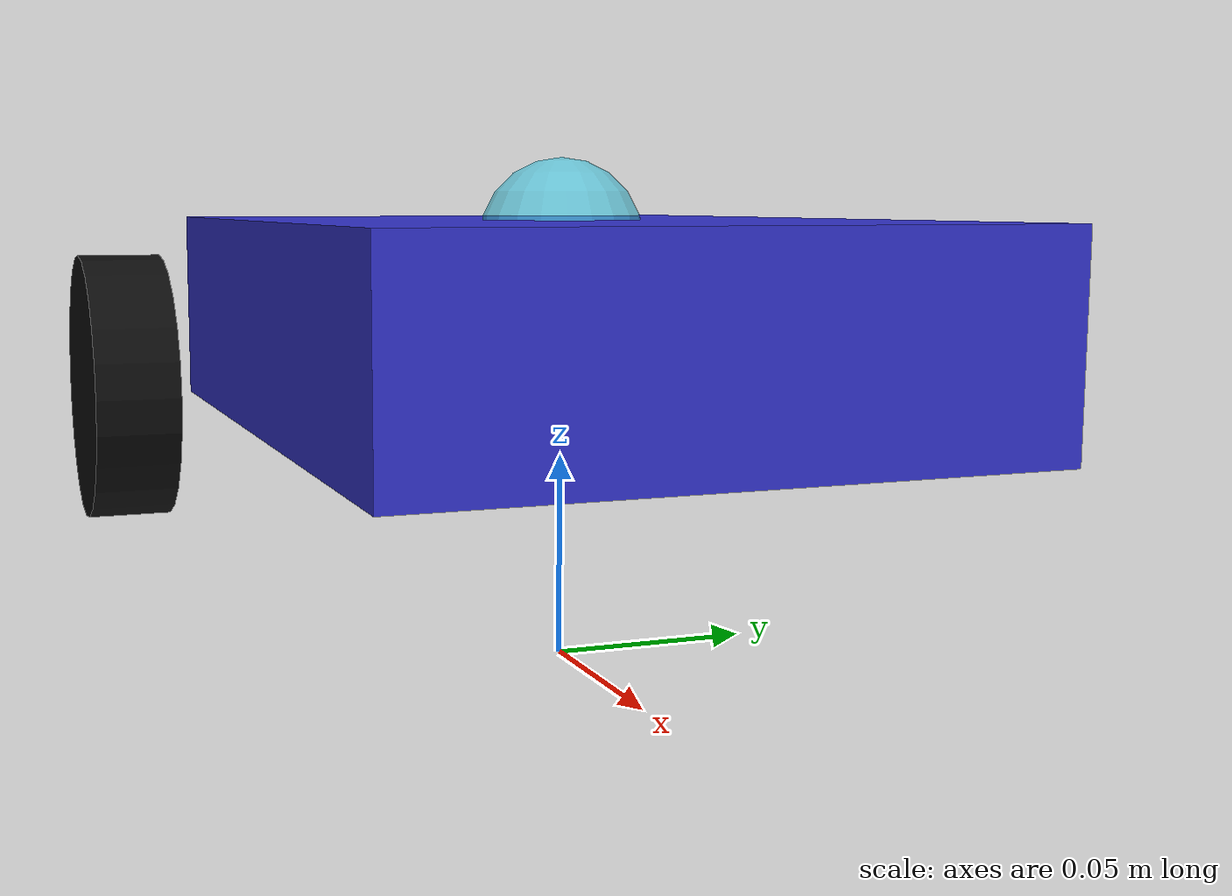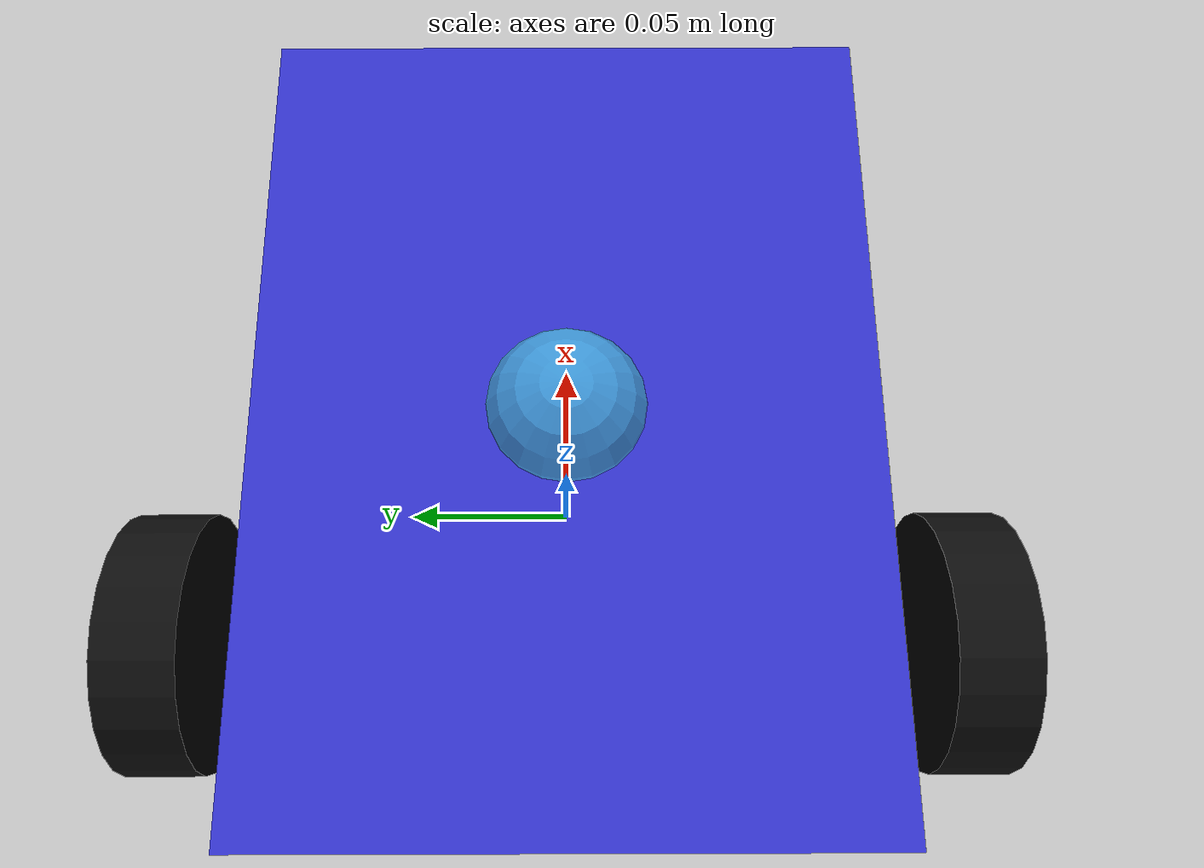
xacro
<?xml version="1.0"?>
<robot xmlns:xacro="http://www.ros.org/wiki/xacro"  name="car">

    <xacro:include filename="car_3wheels.xacro" />
    <xacro:include filename="control.xacro" />
    <xacro:include filename="lidar.xacro" />

</robot>

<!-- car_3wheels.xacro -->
<robot xmlns:xacro="http://www.ros.org/wiki/xacro">

  <!-- Robot Constants -->
  <xacro:property name="PI" value="3.14159" />
  <xacro:property name="base_w" value="0.2" />
  <xacro:property name="base_l" value="0.15" />
  <xacro:property name="base_h" value="0.05" />
  <xacro:property name="wheel_r" value="0.033" />
  <xacro:property name="wheel_len" value="0.02" />
  <xacro:property name="caster_r" value="0.015" />
  <xacro:property name="z_offset" value="${wheel_r}" />
  <xacro:property name="wheel_x_offset" value="-0.05" /> <!-- Wheels slightly back -->

  <!-- Materials -->
  <material name="CarBody">
    <color rgba="0.2 0.2 0.8 1.0"/> <!-- Metallic Blue -->
  </material>

  <material name="WheelMaterial">
    <color rgba="0.05 0.05 0.05 1.0"/> <!-- Dark Rubber -->
  </material>

  <material name="LidarGlass">
    <color rgba="0.3 0.8 0.9 0.7"/> <!-- Transparent Lidar Glass -->
  </material>

  <material name="CasterMetal">
    <color rgba="0.6 0.6 0.6 1.0"/> <!-- Steel -->
  </material>

  <!-- Base Footprint -->
  <link name="base_footprint"/>
  <joint name="base_footprint_joint" type="fixed">
    <parent link="base_footprint"/>
    <child link="base_link"/>
    <origin xyz="0 0 ${wheel_r}" rpy="0 0 0"/>
  </joint>

  <!-- Base Link -->
  <link name="base_link">
    <visual>
      <origin xyz="0 0 ${base_h}" rpy="0 0 0"/>
      <geometry>
        <box size="${base_w} ${base_l} ${base_h}"/>
      </geometry>
      <material name="CarBody"/>
    </visual>
    <collision>
      <origin xyz="0 0 ${base_h * 0.5}" rpy="0 0 0"/>
      <geometry>
        <box size="${base_w} ${base_l} ${base_h}"/>
      </geometry>
    </collision>
    <inertial>
      <mass value="0.3"/>
      <origin xyz="0 0 ${base_h * 0.5}" rpy="0 0 0"/>
      <inertia ixx="0.001" ixy="0" ixz="0" iyy="0.001" iyz="0" izz="0.001"/>
    </inertial>
  </link>

  <!-- Lidar -->
  <link name="lidar">
    <visual>
      <origin xyz="0 0 0" rpy="0 0 0"/>
      <geometry>
        <sphere radius="0.02"/>
      </geometry>
      <material name="LidarGlass"/>
    </visual>
    <collision>
      <origin xyz="0 0 0" rpy="0 0 0"/>
      <geometry>
        <sphere radius="0.02"/>
      </geometry>
    </collision>
    <inertial>
      <mass value="0.1"/>
      <origin xyz="0 0 0" rpy="0 0 0"/>
      <inertia ixx="0.000005" ixy="0" ixz="0" iyy="0.000005" iyz="0" izz="0.000005"/>
    </inertial>
  </link>

  <joint name="lidar_joint" type="fixed">
    <parent link="base_link"/>
    <child link="lidar"/>
    <origin xyz="0 0 ${base_h + 0.02}" rpy="0 0 0"/>
  </joint>

  <!-- Left Wheel -->
  <link name="left_wheel">
    <visual>
      <origin xyz="0 0 0" rpy="${PI * 0.5} 0 0"/>
      <geometry>
        <cylinder length="${wheel_len}" radius="${wheel_r}"/>
      </geometry>
      <material name="WheelMaterial"/>
    </visual>
    <collision>
      <origin xyz="0 0 0" rpy="${PI * 0.5} 0 0"/>
      <geometry>
        <cylinder length="${wheel_len}" radius="${wheel_r}"/>
      </geometry>
    </collision>
    <inertial>
      <mass value="0.3"/>
      <origin xyz="0 0 0" rpy="0 0 0"/>
      <inertia ixx="0.0001" ixy="0" ixz="0" iyy="0.0001" iyz="0" izz="0.0001"/>
    </inertial>
  </link>

  <joint name="left_wheel_joint" type="continuous">
    <parent link="base_link"/>
    <child link="left_wheel"/>
    <origin xyz="${wheel_x_offset} ${base_w * 0.5} ${z_offset}" rpy="0 0 0"/>
    <axis xyz="0 1 0"/>
  </joint>

  <!-- Right Wheel -->
  <link name="right_wheel">
    <visual>
      <origin xyz="0 0 0" rpy="${PI * 0.5} 0 0"/>
      <geometry>
        <cylinder length="${wheel_len}" radius="${wheel_r}"/>
      </geometry>
      <material name="WheelMaterial"/>
    </visual>
    <collision>
      <origin xyz="0 0 0" rpy="${PI * 0.5} 0 0"/>
      <geometry>
        <cylinder length="${wheel_len}" radius="${wheel_r}"/>
      </geometry>
    </collision>
    <inertial>
      <mass value="0.3"/>
      <origin xyz="0 0 0" rpy="0 0 0"/>
      <inertia ixx="0.0001" ixy="0" ixz="0" iyy="0.0001" iyz="0" izz="0.0001"/>
    </inertial>
  </link>

  <joint name="right_wheel_joint" type="continuous">
    <parent link="base_link"/>
    <child link="right_wheel"/>
    <origin xyz="${wheel_x_offset} -${base_w * 0.5} ${z_offset}" rpy="0 0 0"/>
    <axis xyz="0 1 0"/>
  </joint>

  <!-- Frontal Caster Wheel -->
  <link name="caster_frontal_wheel">
    <visual>
      <origin xyz="0 0 0" rpy="0 0 0"/>
      <geometry>
        <sphere radius="${caster_r}"/>
      </geometry>
      <material name="CasterMetal"/>
    </visual>
    <collision>
      <origin xyz="0 0 0" rpy="0 0 0"/>
      <geometry>
        <sphere radius="${caster_r}"/>
      </geometry>
    </collision>
    <inertial>
      <mass value="0.1"/>
      <origin xyz="0 0 0" rpy="0 0 0"/>
      <inertia ixx="0.00001" ixy="0" ixz="0" iyy="0.00001" iyz="0" izz="0.00001"/>
    </inertial>
  </link>

  <joint name="caster_frontal_wheel_joint" type="fixed">
    <parent link="base_link"/>
    <child link="caster_frontal_wheel"/>
    <origin xyz="${base_l * 0.5 - caster_r} 0 ${z_offset}" rpy="0 0 0"/>
  </joint>

</robot>
